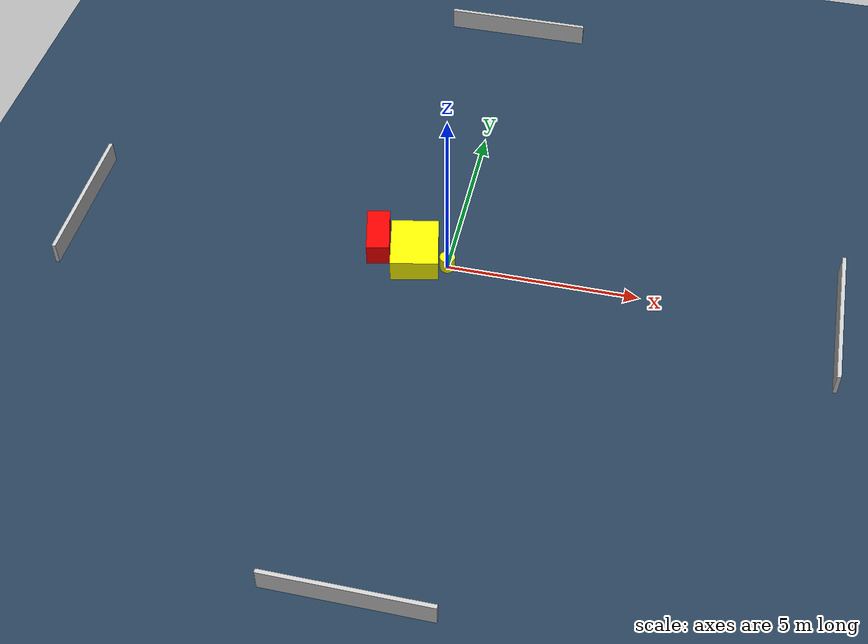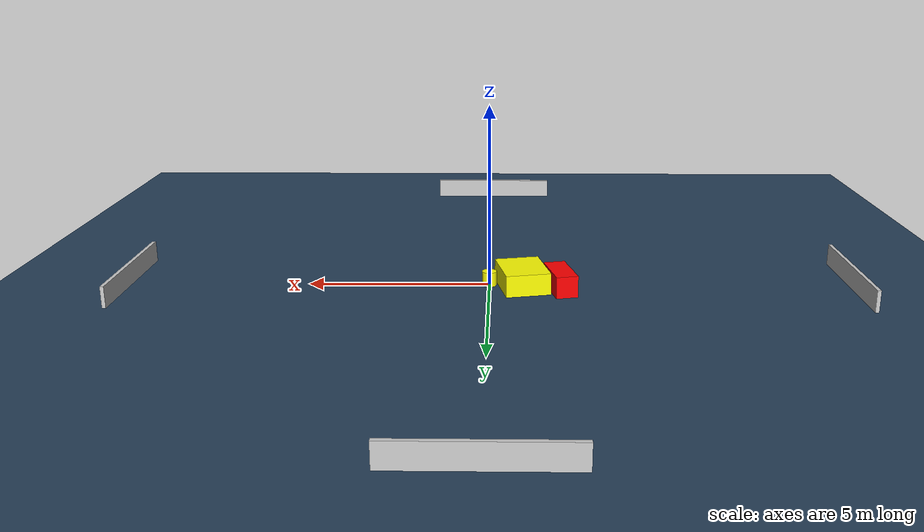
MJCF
<?xml version="1.0" ?>
<mujoco model="generated_environment">
  <option timestep="0.01" integrator="RK4" cone="elliptic"/>
  <default>
    <geom density="1"/>
  </default>
  <asset>
    <texture builtin="gradient" height="3072" name="skybox" rgb1="0.3 0.5 0.7" rgb2="0 0 0" type="skybox" width="512"/>
    <texture builtin="checker" height="300" name="groundplane" rgb1="0.2 0.3 0.4" rgb2="0.1 0.2 0.3" type="2d" width="300"/>
    <material name="groundplane" reflectance="0.2" texrepeat="5 5" texture="groundplane"/>
  </asset>
  <worldbody>
    <light dir="0 0 -1" directional="true" pos="0 0 1.5"/>
    <geom condim="3" friction="0.5 0.005 0.001" material="groundplane" name="floor" pos="0 0 0" size="0 0 0.05" type="plane"/>
    <body name="walls">
      <geom name="wall_1" condim="4" pos="-10.0 0.0 0.3" rgba="0.800000011920929 0.800000011920929 0.800000011920929 1.0" size="0.05 2.0 0.3" type="box"/>
      <geom name="wall_2" condim="4" pos="10.0 0.0 0.3" rgba="0.800000011920929 0.800000011920929 0.800000011920929 1.0" size="0.05 2.0 0.3" type="box"/>
      <geom name="wall_3" condim="4" pos="0.0 -10.0 0.3" rgba="0.800000011920929 0.800000011920929 0.800000011920929 1.0" size="2.0 0.05 0.3" type="box"/>
      <geom name="wall_4" condim="4" pos="0.0 10.0 0.3" rgba="0.800000011920929 0.800000011920929 0.800000011920929 1.0" size="2.0 0.05 0.3" type="box"/>
    </body>
    <body name="robot">
      <joint name="joint_x" type="slide" pos="0 0 0" axis="1 0 0"/>
      <joint name="joint_y" type="slide" pos="0 0 0" axis="0 1 0"/>
      <geom name="robot" type="cylinder" pos="0.0 0.0 0.2" size="0.2 0.2 0.0" mass="5.0" friction="1.0 0.005 0.0001" condim="4" rgba="1.0 1.0 0.0 1.0"/>
    </body>
    <body name="obstacle_1_movable">
      <geom name="obstacle_1_movable" condim="4" pos="-0.9093194201994219 0.1593224216388878 0.3" euler="0 0 281.88246049314586" friction="0.0 0.005 0.001" rgba="1.0 1.0 0.0 1.0" size="0.7716468087392014 0.6199326747020575 0.3" type="box" mass="0.1"/>
      <joint type="free"/>
    </body>
    <body name="obstacle_2_static">
      <geom name="obstacle_2_static" condim="4" pos="-1.94422295123683 0.4004750081058734 0.3" euler="0 0 193.02494359789117" friction="0.0 0.005 0.001" rgba="1.0 0.0 0.0 1.0" size="0.30079698984237363 0.6658607678963839 0.3" type="box"/>
    </body>
  </worldbody>
  <actuator>
    <motor name="actuator_x" joint="joint_x" gear="1" ctrlrange="-1 1"/>
    <motor name="actuator_y" joint="joint_y" gear="1" ctrlrange="-1 1"/>
  </actuator>
</mujoco>
